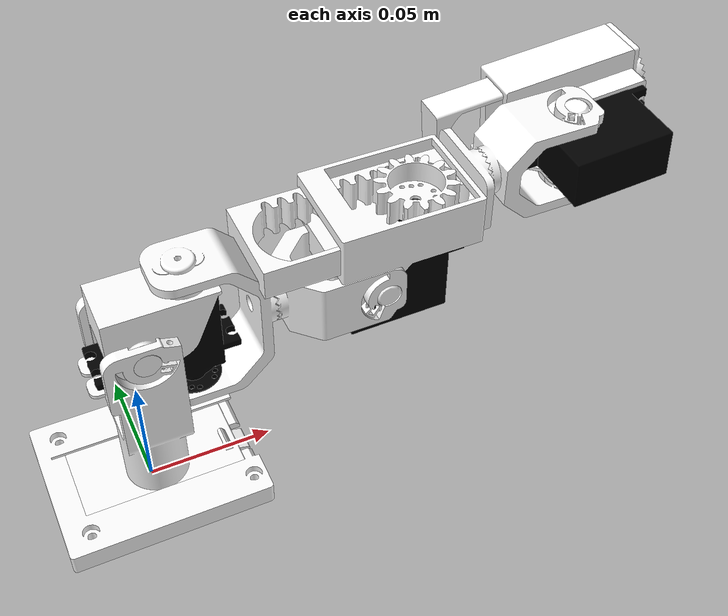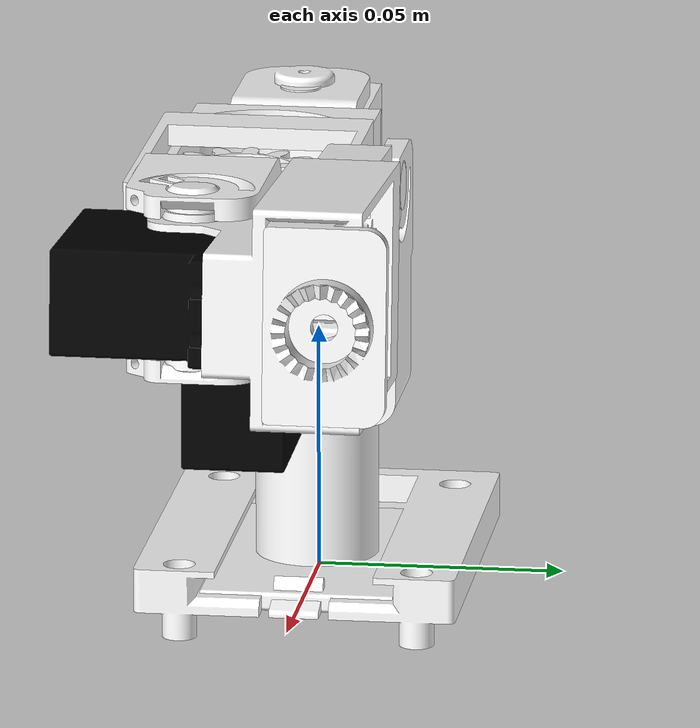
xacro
<?xml version="1.0"?>
<robot xmlns:xacro="http://www.ros.org/wiki/xacro" name="aly_arm">

  <xacro:property name="j0_x" value="0.0030" />
  <xacro:property name="j1_z" value="0.0804" />
  <xacro:property name="phi_1" value="0.0000" />
  <xacro:property name="phi_2" value="1.5700" />
  <xacro:property name="phi_3" value="0.0000" />
  <xacro:property name="phi_4" value="1.5700" />
  <xacro:property name="phi_5" value="0.0000" />

  <link name="world"/>

  <joint name="world_joint" type="fixed">
    <parent link="world"/>
    <child link="base_link"/>
    <origin xyz="0 0 0" rpy="0 0 0"/>
  </joint>

  <link name="base_link">
    <visual>
      <geometry><mesh filename="file:///home/aayacoub/Downloads/AlyRobotics/aly_arm_configurator/backend/meshes/base_fixture-Body.dae" scale="1 1 1"/></geometry>
    </visual>
    <collision>
      <geometry><mesh filename="file:///home/aayacoub/Downloads/AlyRobotics/aly_arm_configurator/backend/meshes/base_fixture-Body.dae" scale="1 1 1"/></geometry>
    </collision>
  </link>

  <joint name="base_holder_joint" type="fixed">
    <parent link="base_link"/>
    <child link="holder_link"/>
    <origin xyz="${j0_x} 0 0" rpy="0.0000 0.0000 0.0000"/>
  </joint>

  <link name="holder_link">
    <visual>
      <origin xyz="0 0 0" rpy="0 0 3.14"/>
      <geometry><mesh filename="file:///home/aayacoub/Downloads/AlyRobotics/aly_arm_configurator/backend/meshes/base_motorholder_90deg_V4-Body.dae" scale="1 1 1"/></geometry>
    </visual>
    <collision>
      <origin xyz="0 0 0" rpy="0 0 3.14"/>
      <geometry><mesh filename="file:///home/aayacoub/Downloads/AlyRobotics/aly_arm_configurator/backend/meshes/base_motorholder_90deg_V4-Body.dae" scale="1 1 1"/></geometry>
    </collision>
  </link>

  <joint name="config_joint_0" type="fixed">
    <parent link="holder_link"/>
    <child link="link_1"/>
    <origin xyz="0 0 ${j1_z}" rpy="0 ${phi_1} 0"/>
  </joint>

  <link name="link_1">
    <visual>
      <origin xyz="0 0 0" rpy="1.57 0 0"/>
      <geometry><mesh filename="file:///home/aayacoub/Downloads/AlyRobotics/aly_arm_configurator/backend/meshes/motor_assembly.dae" scale="1 1 1"/></geometry>
    </visual>
    <collision>
      <origin xyz="0 0 0" rpy="1.57 0 0"/>
      <geometry><mesh filename="file:///home/aayacoub/Downloads/AlyRobotics/aly_arm_configurator/backend/meshes/motor_assembly.dae" scale="1 1 1"/></geometry>
    </collision>
  </link>

  <joint name="joint_0" type="revolute">
    <parent link="link_1"/>
    <child link="link_2"/>
    <origin xyz="0.019500 0 -0.0040" rpy="3.140 0 0"/>
    <axis xyz="0 0 1"/>
    <limit effort="10.0000" lower="-1.2500" upper="1.2000" velocity="1.0000"/>
  </joint>

  <link name="link_2">
    <visual>
      <origin xyz="0 0 0" rpy="0 0 0"/>
      <geometry><mesh filename="file:///home/aayacoub/Downloads/AlyRobotics/aly_arm_configurator/backend/meshes/lnk_active_0deg_hirth_18d0_V2_a2plus-Part.dae" scale="1 1 1"/></geometry>
    </visual>
    <collision>
      <origin xyz="0 0 0" rpy="0 0 0"/>
      <geometry><mesh filename="file:///home/aayacoub/Downloads/AlyRobotics/aly_arm_configurator/backend/meshes/lnk_active_0deg_hirth_18d0_V2_a2plus-Part.dae" scale="1 1 1"/></geometry>
    </collision>
  </link>

  <joint name="config_joint_1" type="fixed">
    <parent link="link_2"/>
    <child link="link_3"/>
    <origin xyz="0.036 0 0" rpy="${phi_2} 0 0"/>
  </joint>

  <link name="link_3">
    <visual>
      <origin xyz="0 0 0" rpy="0 1.57 0"/>
      <geometry><mesh filename="file:///home/aayacoub/Downloads/AlyRobotics/aly_arm_configurator/backend/meshes/lnk_passive_0deg_hirth_18_V3-Body.dae" scale="1 1 1"/></geometry>
    </visual>
    <collision>
      <origin xyz="0 0 0" rpy="0 1.57 0"/>
      <geometry><mesh filename="file:///home/aayacoub/Downloads/AlyRobotics/aly_arm_configurator/backend/meshes/lnk_passive_0deg_hirth_18_V3-Body.dae" scale="1 1 1"/></geometry>
    </collision>
  </link>

  <joint name="config_joint_2" type="fixed">
    <parent link="link_3"/>
    <child link="link_4"/>
    <origin xyz="0.036 0 0" rpy="0 0 ${phi_3}"/>
  </joint>

  <link name="link_4">
    <visual>
      <origin xyz="0 0 0" rpy="3.14 0 0"/>
      <geometry><mesh filename="file:///home/aayacoub/Downloads/AlyRobotics/aly_arm_configurator/backend/meshes/motor_assembly_prismatic_joint.dae" scale="1 1 1"/></geometry>
    </visual>
    <collision>
      <origin xyz="0 0 0" rpy="3.14 0 0"/>
      <geometry><mesh filename="file:///home/aayacoub/Downloads/AlyRobotics/aly_arm_configurator/backend/meshes/motor_assembly_prismatic_joint.dae" scale="1 1 1"/></geometry>
    </collision>
  </link>

  <joint name="joint_1" type="prismatic">
    <parent link="link_4"/>
    <child link="link_5"/>
    <origin xyz="0.045 -0.030 0.0" rpy="3.14 -1.57 0"/>
    <axis xyz="0 0 1"/>
    <limit effort="10.0000" lower="0.0000" upper="0.0450" velocity="1.0000"/>
  </joint>

  <link name="link_5">
    <visual>
      <origin xyz="0 0 0" rpy="0 0 0"/>
      <geometry><mesh filename="file:///home/aayacoub/Downloads/AlyRobotics/aly_arm_configurator/backend/meshes/rack_assebmly-Part.dae" scale="1 1 1"/></geometry>
    </visual>
    <collision>
      <origin xyz="0 0 0" rpy="0 0 0"/>
      <geometry><mesh filename="file:///home/aayacoub/Downloads/AlyRobotics/aly_arm_configurator/backend/meshes/rack_assebmly-Part.dae" scale="1 1 1"/></geometry>
    </collision>
  </link>

  <joint name="config_joint_3" type="fixed">
    <parent link="link_5"/>
    <child link="link_6"/>
    <origin xyz="0 0 0.0036" rpy="0 0 ${phi_4}"/>
  </joint>

  <link name="link_6">
    <visual>
      <origin xyz="0 0 0" rpy="0 0 0"/>
      <geometry><mesh filename="file:///home/aayacoub/Downloads/AlyRobotics/aly_arm_configurator/backend/meshes/lnk_passive_0deg_hirth_18_V3-Body.dae" scale="1 1 1"/></geometry>
    </visual>
    <collision>
      <origin xyz="0 0 0" rpy="0 0 0"/>
      <geometry><mesh filename="file:///home/aayacoub/Downloads/AlyRobotics/aly_arm_configurator/backend/meshes/lnk_passive_0deg_hirth_18_V3-Body.dae" scale="1 1 1"/></geometry>
    </collision>
  </link>

  <joint name="config_joint_4" type="fixed">
    <parent link="link_6"/>
    <child link="link_6_int"/>
    <origin xyz="0 0 0.036" rpy="0 -1.5 0"/>
  </joint>

  <link name="link_6_int"/>

  <joint name="config_joint_5" type="fixed">
    <parent link="link_6_int"/>
    <child link="link_7"/>
    <origin xyz="0 0 0" rpy="0 0 ${phi_5}"/>
  </joint>

  <link name="link_7">
    <visual>
      <origin xyz="0 0 0" rpy="3.14 0 0"/>
      <geometry><mesh filename="file:///home/aayacoub/Downloads/AlyRobotics/aly_arm_configurator/backend/meshes/motor_assembly_prismatic_joint.dae" scale="1 1 1"/></geometry>
    </visual>
    <collision>
      <origin xyz="0 0 0" rpy="3.14 0 0"/>
      <geometry><mesh filename="file:///home/aayacoub/Downloads/AlyRobotics/aly_arm_configurator/backend/meshes/motor_assembly_prismatic_joint.dae" scale="1 1 1"/></geometry>
    </collision>
  </link>

  <joint name="joint_2" type="prismatic">
    <parent link="link_7"/>
    <child link="link_8"/>
    <origin xyz="0.045 -0.030 0.0" rpy="3.14 -1.57 0"/>
    <axis xyz="0 0 1"/>
    <limit effort="10.0000" lower="0.0000" upper="0.0450" velocity="1.0000"/>
  </joint>

  <link name="link_8">
    <visual>
      <origin xyz="0 0 0" rpy="0 0 0"/>
      <geometry><mesh filename="file:///home/aayacoub/Downloads/AlyRobotics/aly_arm_configurator/backend/meshes/rack_assebmly-Part.dae" scale="1 1 1"/></geometry>
    </visual>
    <collision>
      <origin xyz="0 0 0" rpy="0 0 0"/>
      <geometry><mesh filename="file:///home/aayacoub/Downloads/AlyRobotics/aly_arm_configurator/backend/meshes/rack_assebmly-Part.dae" scale="1 1 1"/></geometry>
    </collision>
  </link>

</robot>
